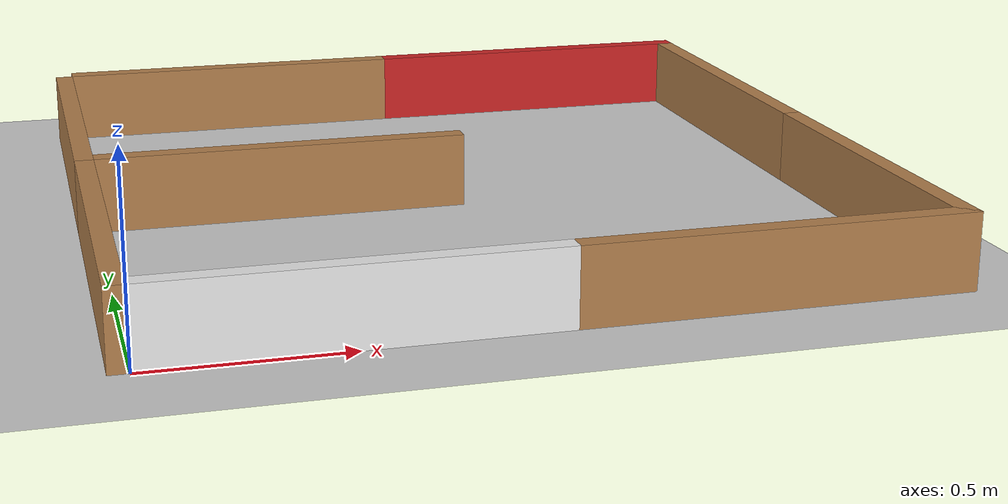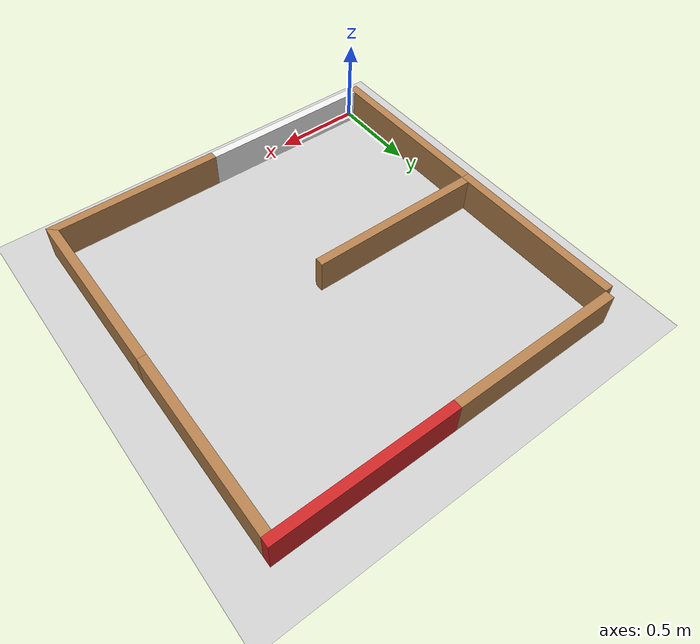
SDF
<sdf version="1.7">
 <world name="world_2_2">
  <include><name>sun</name><uri>model://sun</uri></include>
  <include><name>ground</name><uri>model://ground_plane</uri></include>
  <include><name>labyrinth_2_2</name><uri>model://labyrinth_2_2</uri></include>
  <scene><shadows>0</shadows></scene>
 </world>
</sdf>

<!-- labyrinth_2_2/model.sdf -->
<sdf version="1.7">
    <model name="labyrinth">

			<include><name>0_1h</name><uri>model://wall</uri><pose>0 1 0 0 0 0</pose></include>

			<include><name>0_1v</name><uri>model://wall</uri><pose>0 1 0 0 0 1.5707963267948966</pose></include>

			<include><name>0_2h</name><uri>model://wall</uri><pose>0 2 0 0 0 0</pose></include>

			<include><name>0_0h</name><uri>model://wall_White</uri><pose>0 0 0 0 0 0</pose></include>

			<include><name>0_0v</name><uri>model://wall</uri><pose>0 0 0 0 0 1.5707963267948966</pose></include>

			<include><name>1_2h</name><uri>model://wall_Red</uri><pose>1 2 0 0 0 0</pose></include>

			<include><name>2_1v</name><uri>model://wall</uri><pose>2 1 0 0 0 1.5707963267948966</pose></include>

			<include><name>1_0h</name><uri>model://wall</uri><pose>1 0 0 0 0 0</pose></include>

			<include><name>2_0v</name><uri>model://wall</uri><pose>2 0 0 0 0 1.5707963267948966</pose></include>

	</model>
</sdf>

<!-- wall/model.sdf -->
<sdf version="1.7">
	<model name="wall_Wood">
		<link name="link">
			<visual name="visual">

				<pose>0.5 0.025 0.1 0 0 0</pose>

				<geometry>
					<box>
						<size>1 0.05 0.2</size>
					</box>
				</geometry>

				<material>
					<script>
						<uri>file://media/materials/scripts/gazebo.material</uri>
						<name>Gazebo/Wood</name>
					</script>
				</material>
			</visual>
			<collision name="collision">

				<pose>0.5 0.025 0.1 0 0 0</pose>

				<geometry>
					<box>
						<size>1 0.05 0.2</size>
					</box>
				</geometry>

				<laser_retro>1</laser_retro>
			</collision>
		</link>
	</model>
</sdf>

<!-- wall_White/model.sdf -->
<sdf version="1.7">
	<model name="wall_White">
		<link name="link">
			<visual name="visual">

				<pose>0.5 0.025 0.1 0 0 0</pose>

				<geometry>
					<box>
						<size>1 0.05 0.2</size>
					</box>
				</geometry>

				<material>
					<script>
						<uri>file://media/materials/scripts/gazebo.material</uri>
						<name>Gazebo/White</name>
					</script>
				</material>
			</visual>
			<collision name="collision">

				<pose>0.5 0.025 0.1 0 0 0</pose>

				<geometry>
					<box>
						<size>1 0.05 0.2</size>
					</box>
				</geometry>

				<laser_retro>3</laser_retro>
			</collision>
		</link>
	</model>
</sdf>

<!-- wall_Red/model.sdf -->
<sdf version="1.7">
	<model name="wall_Red">
		<link name="link">
			<visual name="visual">

				<pose>0.5 0.025 0.1 0 0 0</pose>

				<geometry>
					<box>
						<size>1 0.05 0.2</size>
					</box>
				</geometry>

				<material>
					<script>
						<uri>file://media/materials/scripts/gazebo.material</uri>
						<name>Gazebo/Red</name>
					</script>
				</material>
			</visual>
			<collision name="collision">

				<pose>0.5 0.025 0.1 0 0 0</pose>

				<geometry>
					<box>
						<size>1 0.05 0.2</size>
					</box>
				</geometry>

				<laser_retro>2</laser_retro>
			</collision>
			<sensor name='sensor_contact_wall' type='contact'>
				<contact><collision>collision</collision></contact>
			</sensor>
		</link>
		<plugin filename="libTouchPlugin.so" name='plugin_touch'>
			<sensor>sensor_contact_wall</sensor>
			<target>tb3</target>
			<namespace>finish_wall</namespace>
			<time>0.00001</time>
			<enabled>true</enabled>
		</plugin>
	</model>
</sdf>
